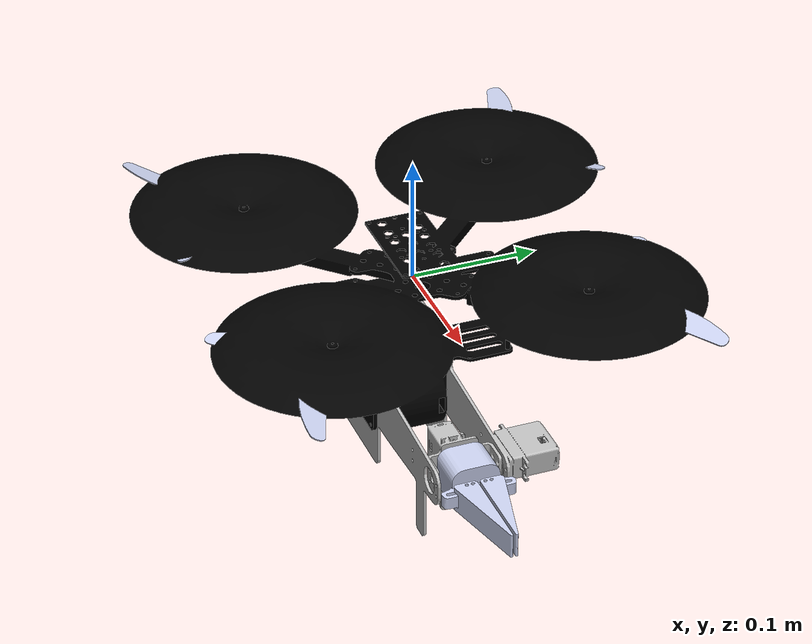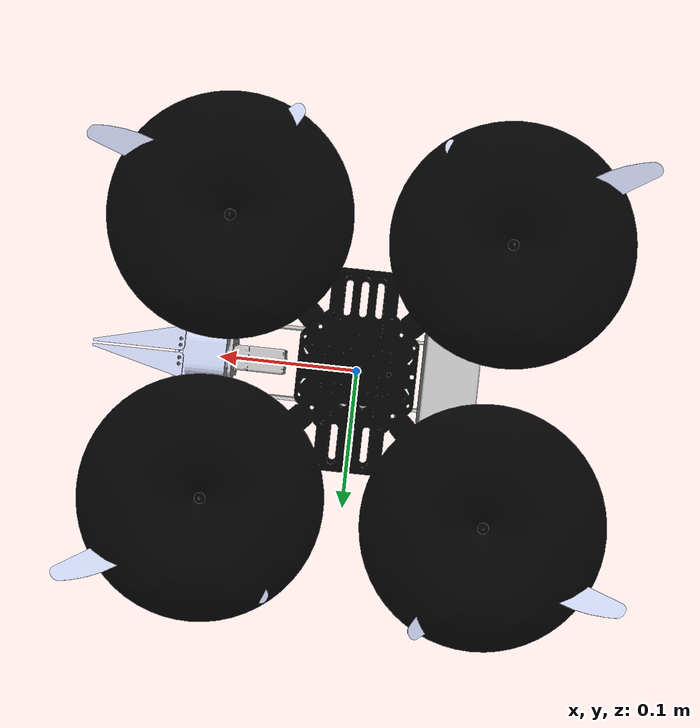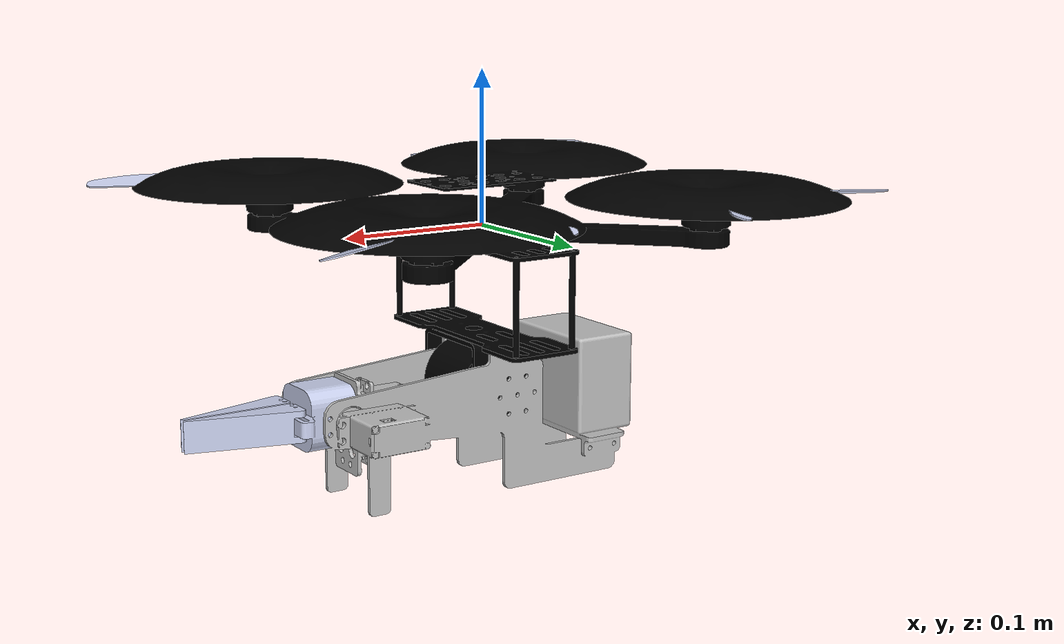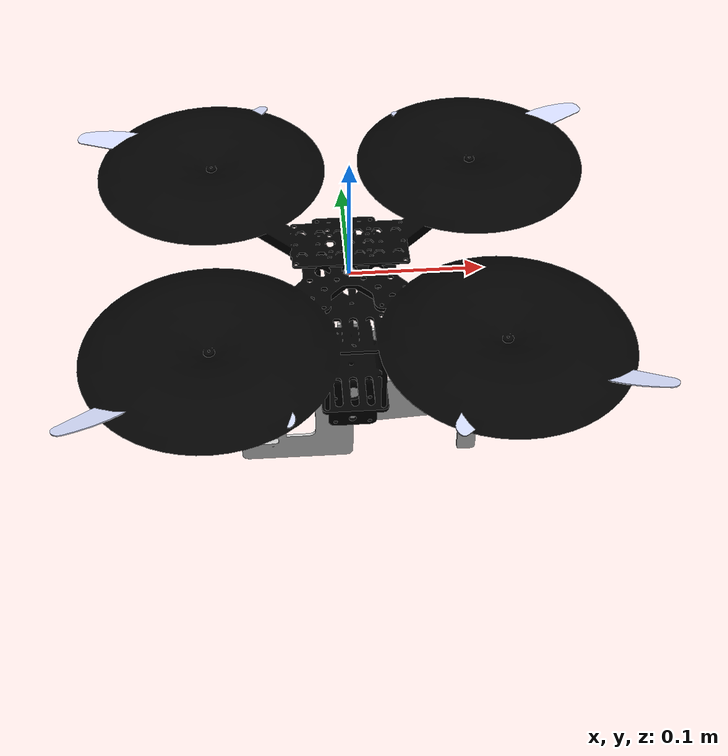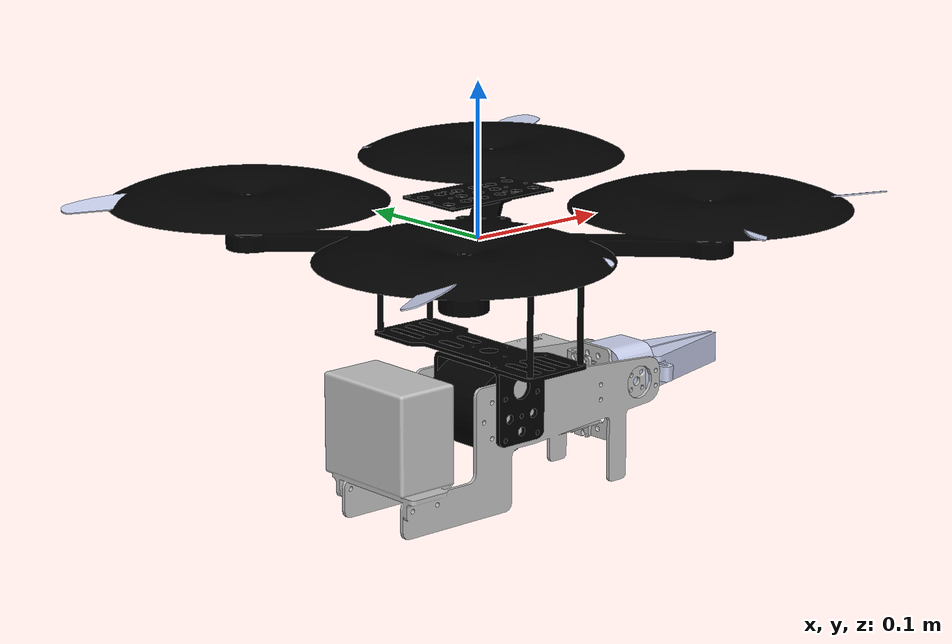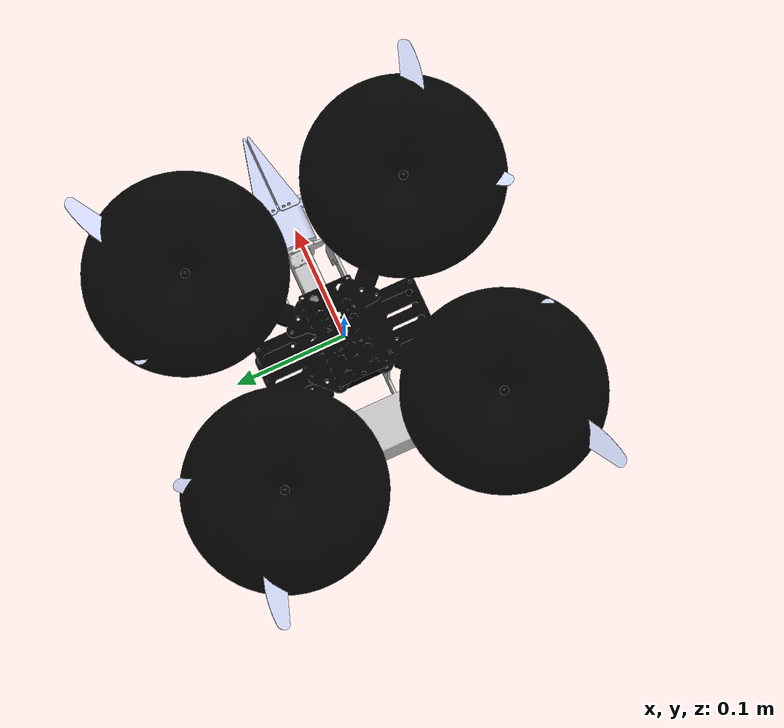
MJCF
<mujoco model="drone_urdf">
  <compiler angle="radian" meshdir="meshes" />
  <asset>
    <mesh name="base_link" content_type="model/stl" file="base_link.STL" />
    <mesh name="arm_link_pitch" content_type="model/stl" file="arm_link_pitch.STL" />
    <mesh name="arm_link_pitch2" content_type="model/stl" file="arm_link_pitch2.STL" />
    <mesh name="arm_link_roll" content_type="model/stl" file="arm_link_roll.STL" />
    <mesh name="arm_link_right_finger" content_type="model/stl" file="arm_link_right_finger.STL" />
    <mesh name="arm_link_left_finger" content_type="model/stl" file="arm_link_left_finger.STL" />
    <mesh name="rotor_0" content_type="model/stl" file="rotor_0.STL" />
    <mesh name="rotor_1" content_type="model/stl" file="rotor_1.STL" />
    <mesh name="rotor_2" content_type="model/stl" file="rotor_2.STL" />
    <mesh name="rotor_3" content_type="model/stl" file="rotor_3.STL" />
    </asset>
  <worldbody>
    <body name="base_link" pos="0 0 0" quat="1 0 0 0">
      <freejoint name="base_free" />
      <geom type="mesh" rgba="0 0 0 1" mesh="base_link" />
      <body name="arm_pitch_link" pos="-0.009 -0.0096 -0.108565">
        <inertial pos="-0.0398454 0.0119006 -0.00382043" quat="-0.000136126 0.576951 -0.00019689 0.816779" mass="0.278848" diaginertia="0.000286784 0.000276262 0.000197652" />
        <joint name="arm_pitch_joint" pos="0 0 0" axis="0 1 0" range="0 1.5708" actuatorfrcrange="-1 1" />
        <geom type="mesh" rgba="0.752941 0.752941 0.752941 1" mesh="arm_link_pitch" />
        <body name="arm_pitch2_link" pos="0.12175 0.00855 0">
          <inertial pos="-0.0235169 4.18533e-06 -0.00768195" quat="0.999822 -0.000819779 0.0188322 -0.00049632" mass="0.0210875" diaginertia="6.40168e-06 4.08924e-06 3.21556e-06" />
          <joint name="arm_pitch2_joint" pos="0 0 0" axis="0 1 0" range="-1.5708 1.5708" actuatorfrcrange="-1 1" />
          <geom type="mesh" rgba="0.752941 0.752941 0.752941 1" mesh="arm_link_pitch2" />
          <body name="arm_roll_link" pos="-0.01275 0 0">
            <inertial pos="0.0214596 0 0" quat="0.707107 0.707107 0 0" mass="0.0484342" diaginertia="1.16041e-05 1.15999e-05 1.03955e-05" />
            <joint name="arm_roll_joint" pos="0 0 0" axis="1 0 0" range="-1.5708 1.5708" actuatorfrcrange="-1 1" />
            <geom type="mesh" rgba="0.792157 0.819608 0.933333 1" mesh="arm_link_roll" />
            <body name="arm_right_finger_link" pos="0.041 0 0" quat="0 -1 0 0">
              <inertial pos="0.0266573 0.00731144 0" quat="0.531927 0.531927 0.465891 0.465891" mass="0.013758" diaginertia="4.72941e-06 4.43352e-06 6.94702e-07" />
              <joint name="arm_right_finger_joint" pos="0 0 0" axis="0 1 0" type="slide" range="-1.5708 1.5708" actuatorfrcrange="-1 1" />
              <geom type="mesh" rgba="0.792157 0.819608 0.933333 1" mesh="arm_link_right_finger" />
              </body>
            <body name="arm_left_finger_link" pos="0.041 0 0">
              <inertial pos="0.0266573 0.00731144 0" quat="0.531927 0.531927 0.465891 0.465891" mass="0.013758" diaginertia="4.72941e-06 4.43352e-06 6.94702e-07" />
              <joint name="arm_left_finger_joint" pos="0 0 0" axis="0 -1 0" type="slide" range="-1.5708 1.5708" actuatorfrcrange="-1 1" />
              <geom type="mesh" rgba="0.792157 0.819608 0.933333 1" mesh="arm_link_left_finger" />
              </body>
            </body>
          </body>
        </body>
      <body name="rotor0_link" pos="0.123744 0.123744 0.0211606">
        <inertial pos="4.10029e-07 2.17598e-07 0.00394569" quat="0.60751 0.361842 -0.607513 0.361843" mass="0.00513322" diaginertia="9.75117e-06 4.89108e-06 4.89084e-06" />
        <joint name="rotor0_joint" pos="0 0 0" axis="0 0 1" />
        <geom type="mesh" rgba="0.792157 0.819608 0.933333 1" mesh="rotor_0" />
        </body>
      <body name="rotor1_link" pos="-0.123744 0.123744 0.0212">
        <inertial pos="-1.75373e-07 8.47259e-09 0.00390633" quat="0.349938 0.614445 -0.349938 0.614445" mass="0.00513323" diaginertia="9.75113e-06 4.89097e-06 4.89091e-06" />
        <joint name="rotor1_joint" pos="0 0 0" axis="0 0 1" />
        <geom type="mesh" rgba="0.792157 0.819608 0.933333 1" mesh="rotor_1" />
        </body>
      <body name="rotor2_link" pos="-0.123744 -0.123744 0.0212">
        <inertial pos="-4.10029e-07 -2.17598e-07 0.00390632" quat="0.607513 0.361843 -0.60751 0.361842" mass="0.00513322" diaginertia="9.75117e-06 4.89108e-06 4.89084e-06" />
        <joint name="rotor2_joint" pos="0 0 0" axis="0 0 1" />
        <geom type="mesh" rgba="0.792157 0.819608 0.933333 1" mesh="rotor_2" />
        </body>
      <body name="rotor3_link" pos="0.123744 -0.123744 0.0212">
        <inertial pos="1.75373e-07 -8.47259e-09 0.00390633" quat="0.349938 0.614445 -0.349938 0.614445" mass="0.00513323" diaginertia="9.75113e-06 4.89097e-06 4.89091e-06" />
        <joint name="rotor3_joint" pos="0 0 0" axis="0 0 1" />
        <geom type="mesh" rgba="0.792157 0.819608 0.933333 1" mesh="rotor_3" />
        </body>
      <site name="imu_site" pos="0 0 0" size="0.005" />
      </body>
    </worldbody>
  </mujoco>
